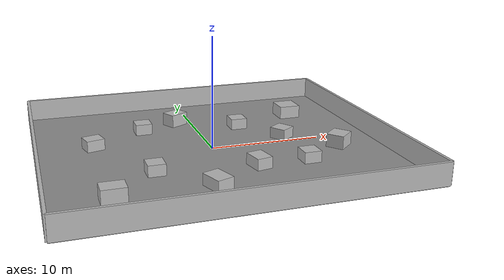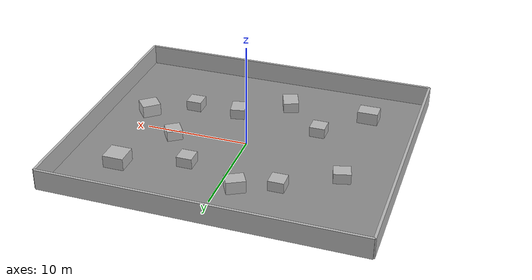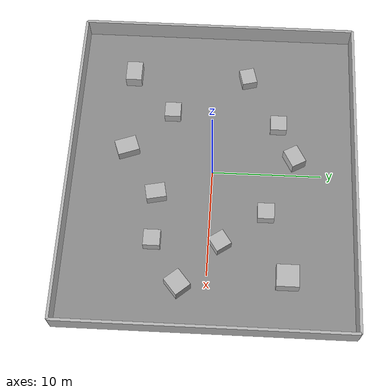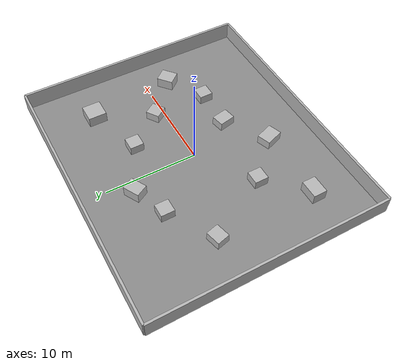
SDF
<?xml version="1.0" ?>
<sdf version="1.8">

  <world name="fieldrobo_world">

    <!-- PHYSICS                                                    -->

    <physics name="1ms" type="ode">
      <max_step_size>0.001</max_step_size>
      <real_time_factor>1</real_time_factor>
      <real_time_update_rate>1000</real_time_update_rate>
    </physics>

    <gravity>0 0 -9.81</gravity>

    <!-- LIGHTING                                                   -->

    <scene>
      <ambient>0.4 0.4 0.4 1</ambient>
      <background>0.7 0.7 0.7 1</background>
      <shadows>true</shadows>
    </scene>

    <light name="sun" type="directional">
      <cast_shadows>true</cast_shadows>
      <pose>0 0 15 0 0 0</pose>
      <diffuse>0.8 0.8 0.8 1</diffuse>
      <specular>0.2 0.2 0.2 1</specular>
      <direction>-0.3 -0.4 -1</direction>
    </light>

    <!-- GROUND                                                      -->

    <model name="ground">
      <static>true</static>

      <link name="link">

        <collision name="collision">
          <geometry>
            <box>
              <size>30 26 0.1</size>
            </box>
          </geometry>
          <pose>0 0 -0.05 0 0 0</pose>
        </collision>

        <visual name="visual">
          <geometry>
            <box>
              <size>30 26 0.1</size>
            </box>
          </geometry>
          <pose>0 0 -0.05 0 0 0</pose>

          <material>
            <ambient>0.55 0.55 0.55 1</ambient>
            <diffuse>0.55 0.55 0.55 1</diffuse>
          </material>
        </visual>

      </link>
    </model>

    <!-- Required Gazebo Fortress system plugins                  -->

    <plugin filename="libignition-gazebo-user-commands-system.so"
        name="ignition::gazebo::systems::UserCommands"/>

    <!-- Physics -->
    <plugin
      filename="libignition-gazebo-physics-system.so"
      name="ignition::gazebo::systems::Physics">
    </plugin>

    <!-- Scene / GUI -->
    <plugin
      filename="libignition-gazebo-scene-broadcaster-system.so"
      name="ignition::gazebo::systems::SceneBroadcaster">
    </plugin>

    <!-- Sensors: required for GPU LiDAR -->
    <plugin
      filename="libignition-gazebo-sensors-system.so"
      name="ignition::gazebo::systems::Sensors">
      <render_engine>ogre2</render_engine>
    </plugin>

    <!-- IMU -->
    <plugin
      filename="libignition-gazebo-imu-system.so"
      name="ignition::gazebo::systems::Imu">
    </plugin>

    <!-- OUTER WALLS                                                 -->

    <!-- North -->
    <model name="wall_north">
      <static>true</static>
      <pose>0 13 1 0 0 0</pose>
      <link name="link">
        <collision name="collision">
          <geometry>
            <box><size>30 0.25 2</size></box>
          </geometry>
        </collision>
        <visual name="visual">
          <geometry>
            <box><size>30 0.25 2</size></box>
          </geometry>
        </visual>
      </link>
    </model>

    <!-- South -->
    <model name="wall_south">
      <static>true</static>
      <pose>0 -13 1 0 0 0</pose>
      <link name="link">
        <collision name="collision">
          <geometry>
            <box><size>30 0.25 2</size></box>
          </geometry>
        </collision>
        <visual name="visual">
          <geometry>
            <box><size>30 0.25 2</size></box>
          </geometry>
        </visual>
      </link>
    </model>

    <!-- West -->
    <model name="wall_west">
      <static>true</static>
      <pose>-15 0 1 0 0 0</pose>
      <link name="link">
        <collision name="collision">
          <geometry>
            <box><size>0.25 26 2</size></box>
          </geometry>
        </collision>
        <visual name="visual">
          <geometry>
            <box><size>0.25 26 2</size></box>
          </geometry>
        </visual>
      </link>
    </model>

    <!-- East -->
    <model name="wall_east">
      <static>true</static>
      <pose>15 0 1 0 0 0</pose>
      <link name="link">
        <collision name="collision">
          <geometry>
            <box><size>0.25 26 2</size></box>
          </geometry>
        </collision>
        <visual name="visual">
          <geometry>
            <box><size>0.25 26 2</size></box>
          </geometry>
        </visual>
      </link>
    </model>

    <!-- SIMPLE EXPLORATION OBSTACLES                              -->
    <!-- Large open free space is intentional so Nav2 can plan    -->
    <!-- between frontiers without getting trapped by narrow      -->
    <!-- corridors or dead ends.                                  -->

    <model name="obstacle_1">
      <static>true</static>
      <pose>-6 -4 0.5 0 0 0</pose>
      <link name="link">
        <collision name="collision">
          <geometry><box><size>1.5 1.5 1</size></box></geometry>
        </collision>
        <visual name="visual">
          <geometry><box><size>1.5 1.5 1</size></box></geometry>
        </visual>
      </link>
    </model>

    <model name="obstacle_2">
      <static>true</static>
      <pose>4 5 0.5 0 0 0</pose>
      <link name="link">
        <collision name="collision">
          <geometry><box><size>1.5 1.5 1</size></box></geometry>
        </collision>
        <visual name="visual">
          <geometry><box><size>1.5 1.5 1</size></box></geometry>
        </visual>
      </link>
    </model>

    <model name="obstacle_3">
      <static>true</static>
      <pose>7 -5 0.5 0 0 0</pose>
      <link name="link">
        <collision name="collision">
          <geometry><box><size>1.5 1.5 1</size></box></geometry>
        </collision>
        <visual name="visual">
          <geometry><box><size>1.5 1.5 1</size></box></geometry>
        </visual>
      </link>
    </model>

    <model name="obstacle_4">
      <static>true</static>
      <pose>-5 6 0.5 0 0 0</pose>
      <link name="link">
        <collision name="collision">
          <geometry><box><size>1.5 1.5 1</size></box></geometry>
        </collision>
        <visual name="visual">
          <geometry><box><size>1.5 1.5 1</size></box></geometry>
        </visual>
      </link>
    </model>

    <model name="obstacle_5">
      <static>true</static>
      <pose>-10 -8 0.6 0 0 0</pose>
      <link name="link">
        <collision name="collision">
          <geometry><box><size>2.0 1.5 1.2</size></box></geometry>
        </collision>
        <visual name="visual">
          <geometry><box><size>2.0 1.5 1.2</size></box></geometry>
        </visual>
      </link>
    </model>

    <model name="obstacle_6">
      <static>true</static>
      <pose>-2 -8 0.5 0 0 0.35</pose>
      <link name="link">
        <collision name="collision">
          <geometry><box><size>1.5 2.0 1</size></box></geometry>
        </collision>
        <visual name="visual">
          <geometry><box><size>1.5 2.0 1</size></box></geometry>
        </visual>
      </link>
    </model>

    <model name="obstacle_7">
      <static>true</static>
      <pose>10 7 0.6 0 0 0</pose>
      <link name="link">
        <collision name="collision">
          <geometry><box><size>2.0 2.0 1.2</size></box></geometry>
        </collision>
        <visual name="visual">
          <geometry><box><size>2.0 2.0 1.2</size></box></geometry>
        </visual>
      </link>
    </model>

    <model name="obstacle_8">
      <static>true</static>
      <pose>7 1 0.5 0 0 0.6</pose>
      <link name="link">
        <collision name="collision">
          <geometry><box><size>1.5 1.5 1</size></box></geometry>
        </collision>
        <visual name="visual">
          <geometry><box><size>1.5 1.5 1</size></box></geometry>
        </visual>
      </link>
    </model>

    <model name="obstacle_9">
      <static>true</static>
      <pose>-10 3 0.5 0 0 0.25</pose>
      <link name="link">
        <collision name="collision"><geometry><box><size>1.6 1.4 1.0</size></box></geometry></collision>
        <visual name="visual"><geometry><box><size>1.6 1.4 1.0</size></box></geometry></visual>
      </link>
    </model>
    <model name="obstacle_10">
      <static>true</static>
      <pose>-1.5 7.5 0.6 0 0 0.5</pose>
      <link name="link">
        <collision name="collision"><geometry><box><size>1.8 1.4 1.2</size></box></geometry></collision>
        <visual name="visual"><geometry><box><size>1.8 1.4 1.2</size></box></geometry></visual>
      </link>
    </model>
    <model name="obstacle_11">
      <static>true</static>
      <pose>2.5 -5.0 0.5 0 0 0.2</pose>
      <link name="link">
        <collision name="collision"><geometry><box><size>1.4 1.8 1.0</size></box></geometry></collision>
        <visual name="visual"><geometry><box><size>1.4 1.8 1.0</size></box></geometry></visual>
      </link>
    </model>
    <model name="obstacle_12">
      <static>true</static>
      <pose>11 -2.5 0.6 0 0 0.7</pose>
      <link name="link">
        <collision name="collision"><geometry><box><size>1.8 1.6 1.2</size></box></geometry></collision>
        <visual name="visual"><geometry><box><size>1.8 1.6 1.2</size></box></geometry></visual>
      </link>
    </model>

  </world>
</sdf>
